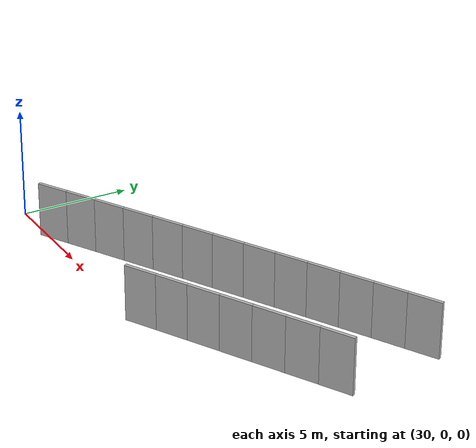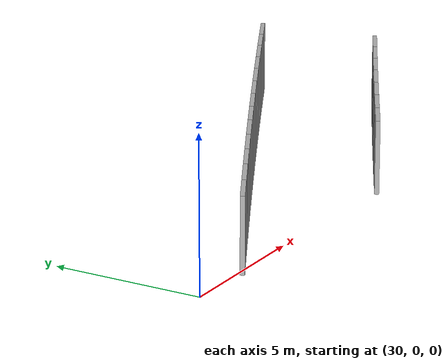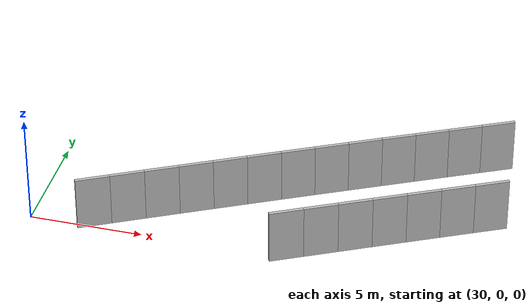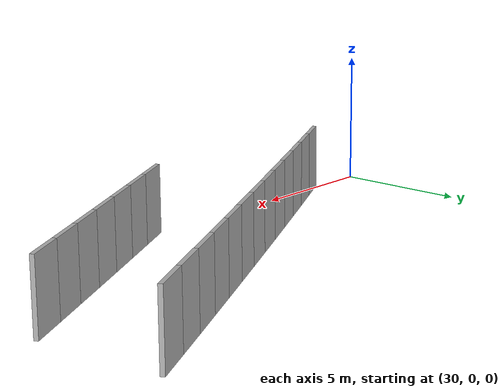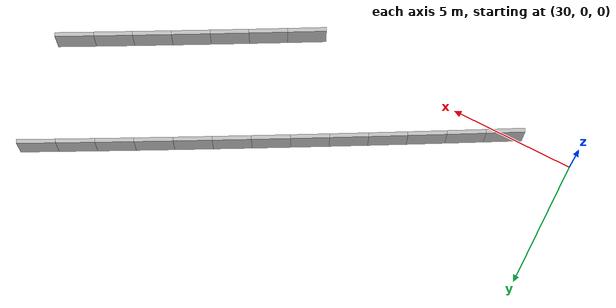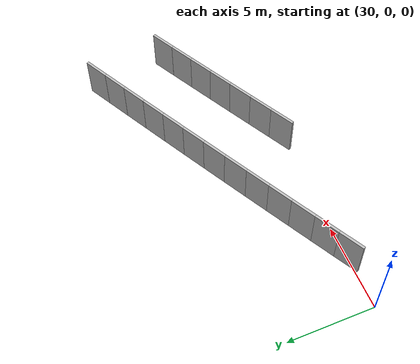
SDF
<?xml version="1.0" ?>
<sdf version="1.6">
  <model name="sps_1445">
    <pose frame="">0 0 0 0 -0 0</pose>
    <static>1</static>
    <self_collide>0</self_collide>
    <allow_auto_disable>0</allow_auto_disable>
    <link name="Wall3164">
      <kinematic>0</kinematic>
      <gravity>1</gravity>
      <self_collide>0</self_collide>
      <collision name="collision">
        <geometry>
          <box>
            <size>1.49653 0.15 2.5</size>
          </box>
        </geometry>
        <pose frame="">0 0 0 0 -0 0</pose>
      </collision>
      <visual name="visual">
        <geometry>
          <box>
            <size>1.49653 0.15 2.5</size>
          </box>
        </geometry>
        <pose frame="">0 0 0 0 -0 0</pose>
        <cast_shadows>1</cast_shadows>
        <transparency>0.0</transparency>
      </visual>
      <pose frame="">49.3705 4.2129 1.25 0 0 -2.66538</pose>
    </link>
    <link name="Wall3165">
      <kinematic>0</kinematic>
      <gravity>1</gravity>
      <self_collide>0</self_collide>
      <collision name="collision">
        <geometry>
          <box>
            <size>1.49642 0.15 2.5</size>
          </box>
        </geometry>
        <pose frame="">0 0 0 0 -0 0</pose>
      </collision>
      <visual name="visual">
        <geometry>
          <box>
            <size>1.49642 0.15 2.5</size>
          </box>
        </geometry>
        <pose frame="">0 0 0 0 -0 0</pose>
        <cast_shadows>1</cast_shadows>
        <transparency>0.0</transparency>
      </visual>
      <pose frame="">48.0411 3.5258 1.25 0 0 -2.66374</pose>
    </link>
    <link name="Wall3166">
      <kinematic>0</kinematic>
      <gravity>1</gravity>
      <self_collide>0</self_collide>
      <collision name="collision">
        <geometry>
          <box>
            <size>1.49651 0.15 2.5</size>
          </box>
        </geometry>
        <pose frame="">0 0 0 0 -0 0</pose>
      </collision>
      <visual name="visual">
        <geometry>
          <box>
            <size>1.49651 0.15 2.5</size>
          </box>
        </geometry>
        <pose frame="">0 0 0 0 -0 0</pose>
        <cast_shadows>1</cast_shadows>
        <transparency>0.0</transparency>
      </visual>
      <pose frame="">46.7128 2.83659 1.25 0 0 -2.6622</pose>
    </link>
    <link name="Wall3167">
      <kinematic>0</kinematic>
      <gravity>1</gravity>
      <self_collide>0</self_collide>
      <collision name="collision">
        <geometry>
          <box>
            <size>1.49649 0.15 2.5</size>
          </box>
        </geometry>
        <pose frame="">0 0 0 0 -0 0</pose>
      </collision>
      <visual name="visual">
        <geometry>
          <box>
            <size>1.49649 0.15 2.5</size>
          </box>
        </geometry>
        <pose frame="">0 0 0 0 -0 0</pose>
        <cast_shadows>1</cast_shadows>
        <transparency>0.0</transparency>
      </visual>
      <pose frame="">45.3855 2.14537 1.25 0 0 -2.66073</pose>
    </link>
    <link name="Wall3168">
      <kinematic>0</kinematic>
      <gravity>1</gravity>
      <self_collide>0</self_collide>
      <collision name="collision">
        <geometry>
          <box>
            <size>1.49657 0.15 2.5</size>
          </box>
        </geometry>
        <pose frame="">0 0 0 0 -0 0</pose>
      </collision>
      <visual name="visual">
        <geometry>
          <box>
            <size>1.49657 0.15 2.5</size>
          </box>
        </geometry>
        <pose frame="">0 0 0 0 -0 0</pose>
        <cast_shadows>1</cast_shadows>
        <transparency>0.0</transparency>
      </visual>
      <pose frame="">44.0593 1.45198 1.25 0 0 -2.65896</pose>
    </link>
    <link name="Wall3169">
      <kinematic>0</kinematic>
      <gravity>1</gravity>
      <self_collide>0</self_collide>
      <collision name="collision">
        <geometry>
          <box>
            <size>1.49622 0.15 2.5</size>
          </box>
        </geometry>
        <pose frame="">0 0 0 0 -0 0</pose>
      </collision>
      <visual name="visual">
        <geometry>
          <box>
            <size>1.49622 0.15 2.5</size>
          </box>
        </geometry>
        <pose frame="">0 0 0 0 -0 0</pose>
        <cast_shadows>1</cast_shadows>
        <transparency>0.0</transparency>
      </visual>
      <pose frame="">42.7342 0.756606 1.25 0 0 -2.65764</pose>
    </link>
    <link name="Wall3170">
      <kinematic>0</kinematic>
      <gravity>1</gravity>
      <self_collide>0</self_collide>
      <collision name="collision">
        <geometry>
          <box>
            <size>1.49677 0.15 2.5</size>
          </box>
        </geometry>
        <pose frame="">0 0 0 0 -0 0</pose>
      </collision>
      <visual name="visual">
        <geometry>
          <box>
            <size>1.49677 0.15 2.5</size>
          </box>
        </geometry>
        <pose frame="">0 0 0 0 -0 0</pose>
        <cast_shadows>1</cast_shadows>
        <transparency>0.0</transparency>
      </visual>
      <pose frame="">41.4102 0.0590962 1.25 0 0 -2.6558</pose>
    </link>
    <link name="Wall5774">
      <kinematic>0</kinematic>
      <gravity>1</gravity>
      <self_collide>0</self_collide>
      <collision name="collision">
        <geometry>
          <box>
            <size>1.503 0.15 2.5</size>
          </box>
        </geometry>
        <pose frame="">0 0 0 0 -0 0</pose>
      </collision>
      <visual name="visual">
        <geometry>
          <box>
            <size>1.503 0.15 2.5</size>
          </box>
        </geometry>
        <pose frame="">0 0 0 0 -0 0</pose>
        <cast_shadows>1</cast_shadows>
        <transparency>0.0</transparency>
      </visual>
      <pose frame="">48.8003 8.57558 1.25 0 0 -2.66687</pose>
    </link>
    <link name="Wall5775">
      <kinematic>0</kinematic>
      <gravity>1</gravity>
      <self_collide>0</self_collide>
      <collision name="collision">
        <geometry>
          <box>
            <size>1.50302 0.15 2.5</size>
          </box>
        </geometry>
        <pose frame="">0 0 0 0 -0 0</pose>
      </collision>
      <visual name="visual">
        <geometry>
          <box>
            <size>1.50302 0.15 2.5</size>
          </box>
        </geometry>
        <pose frame="">0 0 0 0 -0 0</pose>
        <cast_shadows>1</cast_shadows>
        <transparency>0.0</transparency>
      </visual>
      <pose frame="">47.464 7.88759 1.25 0 0 -2.66541</pose>
    </link>
    <link name="Wall5776">
      <kinematic>0</kinematic>
      <gravity>1</gravity>
      <self_collide>0</self_collide>
      <collision name="collision">
        <geometry>
          <box>
            <size>1.50314 0.15 2.5</size>
          </box>
        </geometry>
        <pose frame="">0 0 0 0 -0 0</pose>
      </collision>
      <visual name="visual">
        <geometry>
          <box>
            <size>1.50314 0.15 2.5</size>
          </box>
        </geometry>
        <pose frame="">0 0 0 0 -0 0</pose>
        <cast_shadows>1</cast_shadows>
        <transparency>0.0</transparency>
      </visual>
      <pose frame="">46.1287 7.19749 1.25 0 0 -2.66376</pose>
    </link>
    <link name="Wall5777">
      <kinematic>0</kinematic>
      <gravity>1</gravity>
      <self_collide>0</self_collide>
      <collision name="collision">
        <geometry>
          <box>
            <size>1.50309 0.15 2.5</size>
          </box>
        </geometry>
        <pose frame="">0 0 0 0 -0 0</pose>
      </collision>
      <visual name="visual">
        <geometry>
          <box>
            <size>1.50309 0.15 2.5</size>
          </box>
        </geometry>
        <pose frame="">0 0 0 0 -0 0</pose>
        <cast_shadows>1</cast_shadows>
        <transparency>0.0</transparency>
      </visual>
      <pose frame="">44.7945 6.5052 1.25 0 0 -2.66215</pose>
    </link>
    <link name="Wall5778">
      <kinematic>0</kinematic>
      <gravity>1</gravity>
      <self_collide>0</self_collide>
      <collision name="collision">
        <geometry>
          <box>
            <size>1.50313 0.15 2.5</size>
          </box>
        </geometry>
        <pose frame="">0 0 0 0 -0 0</pose>
      </collision>
      <visual name="visual">
        <geometry>
          <box>
            <size>1.50313 0.15 2.5</size>
          </box>
        </geometry>
        <pose frame="">0 0 0 0 -0 0</pose>
        <cast_shadows>1</cast_shadows>
        <transparency>0.0</transparency>
      </visual>
      <pose frame="">43.4614 5.81081 1.25 0 0 -2.6606</pose>
    </link>
    <link name="Wall5779">
      <kinematic>0</kinematic>
      <gravity>1</gravity>
      <self_collide>0</self_collide>
      <collision name="collision">
        <geometry>
          <box>
            <size>1.50292 0.15 2.5</size>
          </box>
        </geometry>
        <pose frame="">0 0 0 0 -0 0</pose>
      </collision>
      <visual name="visual">
        <geometry>
          <box>
            <size>1.50292 0.15 2.5</size>
          </box>
        </geometry>
        <pose frame="">0 0 0 0 -0 0</pose>
        <cast_shadows>1</cast_shadows>
        <transparency>0.0</transparency>
      </visual>
      <pose frame="">42.1294 5.11449 1.25 0 0 -2.6592</pose>
    </link>
    <link name="Wall5780">
      <kinematic>0</kinematic>
      <gravity>1</gravity>
      <self_collide>0</self_collide>
      <collision name="collision">
        <geometry>
          <box>
            <size>1.50311 0.15 2.5</size>
          </box>
        </geometry>
        <pose frame="">0 0 0 0 -0 0</pose>
      </collision>
      <visual name="visual">
        <geometry>
          <box>
            <size>1.50311 0.15 2.5</size>
          </box>
        </geometry>
        <pose frame="">0 0 0 0 -0 0</pose>
        <cast_shadows>1</cast_shadows>
        <transparency>0.0</transparency>
      </visual>
      <pose frame="">40.7985 4.41609 1.25 0 0 -2.65748</pose>
    </link>
    <link name="Wall5781">
      <kinematic>0</kinematic>
      <gravity>1</gravity>
      <self_collide>0</self_collide>
      <collision name="collision">
        <geometry>
          <box>
            <size>1.50311 0.15 2.5</size>
          </box>
        </geometry>
        <pose frame="">0 0 0 0 -0 0</pose>
      </collision>
      <visual name="visual">
        <geometry>
          <box>
            <size>1.50311 0.15 2.5</size>
          </box>
        </geometry>
        <pose frame="">0 0 0 0 -0 0</pose>
        <cast_shadows>1</cast_shadows>
        <transparency>0.0</transparency>
      </visual>
      <pose frame="">39.4687 3.71541 1.25 0 0 -2.65582</pose>
    </link>
    <link name="Wall5782">
      <kinematic>0</kinematic>
      <gravity>1</gravity>
      <self_collide>0</self_collide>
      <collision name="collision">
        <geometry>
          <box>
            <size>1.50309 0.15 2.5</size>
          </box>
        </geometry>
        <pose frame="">0 0 0 0 -0 0</pose>
      </collision>
      <visual name="visual">
        <geometry>
          <box>
            <size>1.50309 0.15 2.5</size>
          </box>
        </geometry>
        <pose frame="">0 0 0 0 -0 0</pose>
        <cast_shadows>1</cast_shadows>
        <transparency>0.0</transparency>
      </visual>
      <pose frame="">38.14 3.0125 1.25 0 0 -2.65412</pose>
    </link>
    <link name="Wall5783">
      <kinematic>0</kinematic>
      <gravity>1</gravity>
      <self_collide>0</self_collide>
      <collision name="collision">
        <geometry>
          <box>
            <size>1.503 0.15 2.5</size>
          </box>
        </geometry>
        <pose frame="">0 0 0 0 -0 0</pose>
      </collision>
      <visual name="visual">
        <geometry>
          <box>
            <size>1.503 0.15 2.5</size>
          </box>
        </geometry>
        <pose frame="">0 0 0 0 -0 0</pose>
        <cast_shadows>1</cast_shadows>
        <transparency>0.0</transparency>
      </visual>
      <pose frame="">36.8126 2.30757 1.25 0 0 -2.65275</pose>
    </link>
    <link name="Wall5784">
      <kinematic>0</kinematic>
      <gravity>1</gravity>
      <self_collide>0</self_collide>
      <collision name="collision">
        <geometry>
          <box>
            <size>1.5031 0.15 2.5</size>
          </box>
        </geometry>
        <pose frame="">0 0 0 0 -0 0</pose>
      </collision>
      <visual name="visual">
        <geometry>
          <box>
            <size>1.5031 0.15 2.5</size>
          </box>
        </geometry>
        <pose frame="">0 0 0 0 -0 0</pose>
        <cast_shadows>1</cast_shadows>
        <transparency>0.0</transparency>
      </visual>
      <pose frame="">35.4862 1.60057 1.25 0 0 -2.65099</pose>
    </link>
    <link name="Wall5785">
      <kinematic>0</kinematic>
      <gravity>1</gravity>
      <self_collide>0</self_collide>
      <collision name="collision">
        <geometry>
          <box>
            <size>1.50318 0.15 2.5</size>
          </box>
        </geometry>
        <pose frame="">0 0 0 0 -0 0</pose>
      </collision>
      <visual name="visual">
        <geometry>
          <box>
            <size>1.50318 0.15 2.5</size>
          </box>
        </geometry>
        <pose frame="">0 0 0 0 -0 0</pose>
        <cast_shadows>1</cast_shadows>
        <transparency>0.0</transparency>
      </visual>
      <pose frame="">34.1608 0.891372 1.25 0 0 -2.6495</pose>
    </link>
    <link name="Wall5786">
      <kinematic>0</kinematic>
      <gravity>1</gravity>
      <self_collide>0</self_collide>
      <collision name="collision">
        <geometry>
          <box>
            <size>1.50303 0.15 2.5</size>
          </box>
        </geometry>
        <pose frame="">0 0 0 0 -0 0</pose>
      </collision>
      <visual name="visual">
        <geometry>
          <box>
            <size>1.50303 0.15 2.5</size>
          </box>
        </geometry>
        <pose frame="">0 0 0 0 -0 0</pose>
        <cast_shadows>1</cast_shadows>
        <transparency>0.0</transparency>
      </visual>
      <pose frame="">32.8366 0.18019 1.25 0 0 -2.64798</pose>
    </link>
  </model>
</sdf>
